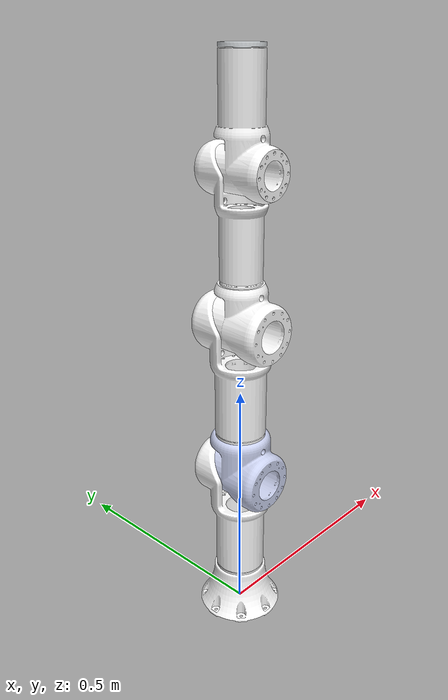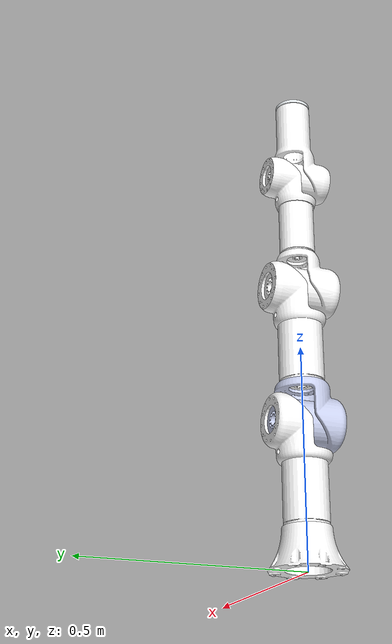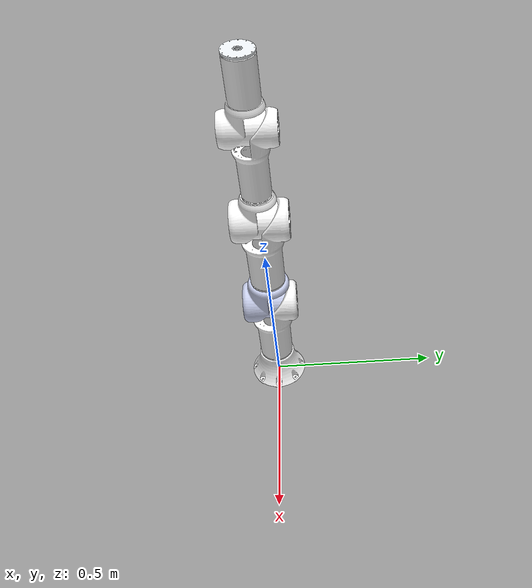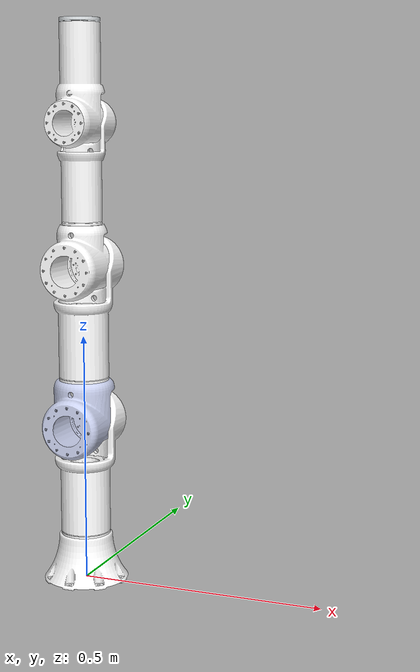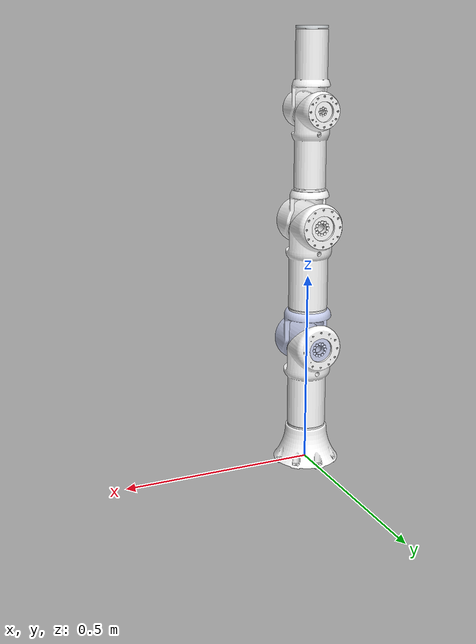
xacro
<?xml version="1.0" encoding="utf-8"?>
<robot name="armt" xmlns:xacro="http://ros.org/wiki/xacro">

<xacro:include filename="$(find armt_description)/robot/joint_gazebo.urdf.xacro" />

<gazebo reference="base_link">
  <material>Gazebo/DarkGrey</material>
  <mu1 value="10.0"/>
  <mu2 value="10.0"/>
  <kp value="100000000.0" />
  <kd value="1.0" />
  <fdir1 value="1 0 0"/>
  <gravity value="true"/>
</gazebo>

<gazebo>
    <plugin name="gazebo_ros_control" filename="libgazebo_ros_control.so">
      <robotNamespace>armt</robotNamespace>
      <robotSimType>gazebo_ros_control/DefaultRobotHWSim</robotSimType>
      <legacyModeNS>true</legacyModeNS>
   </plugin>
</gazebo>
<!-- simple  joints macros configure the joint driver and param-->
  <xacro:armt_joint joint_prefix="1"> </xacro:armt_joint>
  <xacro:armt_joint joint_prefix="2"> </xacro:armt_joint>
  <xacro:armt_joint joint_prefix="3"> </xacro:armt_joint>
  <xacro:armt_joint joint_prefix="4"> </xacro:armt_joint>
  <xacro:armt_joint joint_prefix="5"> </xacro:armt_joint>
  <xacro:armt_joint joint_prefix="6"> </xacro:armt_joint>
  <xacro:armt_joint joint_prefix="7"> </xacro:armt_joint>

  <link name="world"/>

<joint name="fixed" type="fixed">
  <parent link="world"/>
  <child link="base_link"/>
</joint>

  <link
    name="base_link">
    <inertial>
      <origin
        xyz="1.1573E-17 0.038378 -6.6824E-18"
        rpy="0 0 0" />
      <mass
        value="1.52905" />
      <inertia
        ixx="0.0013499"
        ixy="1.8086E-19"
        ixz="3.6213E-19"
        iyy="0.0018032"
        iyz="-9.8905E-19"
        izz="0.0013499" />
    </inertial>
    <visual>
      <origin
        xyz="0 0 0"
        rpy="0 0 0" />
      <geometry>
        <mesh
          filename="package://arm_hand/meshes/base_link.STL" />
      </geometry>
      <material
        name="">
        <color
          rgba="1 1 1 1" />
      </material>
    </visual>
    <collision>
      <origin
        xyz="0 0 0"
        rpy="0 0 0" />
      <geometry>
        <mesh
          filename="package://arm_hand/meshes/base_link.STL" />
      </geometry>
    </collision>
  </link>
  <link
    name="link1">
    <inertial>
      <origin
        xyz="0.00010945 0.018543 0.12833"
        rpy="0 0 0" />
      <mass
        value="1.60706" />
      <inertia
        ixx="0.0052527"
        ixy="1.2302E-06"
        ixz="6.2782E-06"
        iyy="0.0052194"
        iyz="-0.001062"
        izz="0.0016215" />
    </inertial>
    <visual>
      <origin
        xyz="0 0 0"
        rpy="0 0 0" />
      <geometry>
        <mesh
          filename="package://arm_hand/meshes/link1.STL" />
      </geometry>
      <material
        name="">
        <color
          rgba="1 1 1 1" />
      </material>
    </visual>
    <collision>
      <origin
        xyz="0 0 0"
        rpy="0 0 0" />
      <geometry>
        <mesh
          filename="package://arm_hand/meshes/link1.STL" />
      </geometry>
    </collision>
  </link>
  <joint
    name="joint1"
    type="revolute">
    <origin
      xyz="0 0 0.093"
      rpy="0 0 0" />
    <parent
      link="base_link" />
    <child
      link="link1" />
    <axis
      xyz="0 0 1" />
      <limit
        lower="-3"
        upper="3"
        effort="100"
        velocity="2" />
  </joint>
  <link
    name="link2">
    <inertial>
      <origin
        xyz="0.00011075 -0.017942 0.0078663"
        rpy="0 0 0" />
      <mass
        value="1.60706" />
      <inertia
        ixx="0.0024049"
        ixy="-1.1871E-06"
        ixz="2.9893E-06"
        iyy="0.0021682"
        iyz="2.4034E-06"
        izz="0.0018251" />
    </inertial>
    <visual>
      <origin
        xyz="0 0 0"
        rpy="0 0 0" />
      <geometry>
        <mesh
          filename="package://arm_hand/meshes/link2.STL" />
      </geometry>
      <material
        name="">
        <color
          rgba="0.79216 0.81961 0.93333 1" />
      </material>
    </visual>
    <collision>
      <origin
        xyz="0 0 0"
        rpy="0 0 0" />
      <geometry>
        <mesh
          filename="package://arm_hand/meshes/link2.STL" />
      </geometry>
    </collision>
  </link>
  <joint
    name="joint2"
    type="revolute">
    <origin
      xyz="0 0 0.2305"
      rpy="-1.5708 0 3.1416" />
    <parent
      link="link1" />
    <child
      link="link2" />
    <axis
      xyz="0 0 1" />
    <limit
      lower="-1.5708"
      upper="1.5708"
      effort="100"
      velocity="2" />
  </joint>
  <link
    name="link3">
    <inertial>
      <origin
        xyz="0.00012135 0.016856 0.12027"
        rpy="0 0 0" />
      <mass
        value="1.55026" />
      <inertia
        ixx="0.0046713"
        ixy="1.1239E-06"
        ixz="5.7279E-06"
        iyy="0.0045964"
        iyz="-0.00093576"
        izz="0.0014215" />
    </inertial>
    <visual>
      <origin
        xyz="0 0 0"
        rpy="0 0 0" />
      <geometry>
        <mesh
          filename="package://arm_hand/meshes/link3.STL" />
      </geometry>
      <material
        name="">
        <color
          rgba="1 1 1 1" />
      </material>
    </visual>
    <collision>
      <origin
        xyz="0 0 0"
        rpy="0 0 0" />
      <geometry>
        <mesh
          filename="package://arm_hand/meshes/link3.STL" />
      </geometry>
    </collision>
  </link>
  <joint
    name="joint3"
    type="revolute">
    <origin
      xyz="0 -0.0875 0"
      rpy="-1.5708 0 -3.1416" />
    <parent
      link="link2" />
    <child
      link="link3" />
    <axis
      xyz="0 0 1" />
      <limit
        lower="-3"
        upper="3"
        effort="100"
        velocity="2" />
  </joint>
  <link
    name="link4">
    <inertial>
      <origin
        xyz="0.00012809 -0.012483 0.0052641"
        rpy="0 0 0" />
      <mass
        value="1.52212" />
      <inertia
        ixx="0.0019651"
        ixy="-8.33E-07"
        ixz="2.8077E-06"
        iyy="0.0017984"
        iyz="2.5495E-05"
        izz="0.0013529" />
    </inertial>
    <visual>
      <origin
        xyz="0 0 0"
        rpy="0 0 0" />
      <geometry>
        <mesh
          filename="package://arm_hand/meshes/link4.STL" />
      </geometry>
      <material
        name="">
        <color
          rgba="1 1 1 1" />
      </material>
    </visual>
    <collision>
      <origin
        xyz="0 0 0"
        rpy="0 0 0" />
      <geometry>
        <mesh
          filename="package://arm_hand/meshes/link4.STL" />
      </geometry>
    </collision>
  </link>
  <joint
    name="joint4"
    type="revolute">
    <origin
      xyz="0 0 0.2285"
      rpy="-1.5708 0 3.1416" />
    <parent
      link="link3" />
    <child
      link="link4" />
    <axis
      xyz="0 0 1" />
    <limit
      lower="-1.5708"
      upper="1.5708"
      effort="100"
      velocity="2" />
  </joint>
  <link
    name="link5">
    <inertial>
      <origin
        xyz="1.2142E-07 0.015081 0.10577"
        rpy="0 0 0" />
      <mass
        value="1.33383" />
      <inertia
        ixx="0.0021595"
        ixy="-1.4296E-09"
        ixz="9.1759E-11"
        iyy="0.0020793"
        iyz="-0.00045807"
        izz="0.00059386" />
    </inertial>
    <visual>
      <origin
        xyz="0 0 0"
        rpy="0 0 0" />
      <geometry>
        <mesh
          filename="package://arm_hand/meshes/link5.STL" />
      </geometry>
      <material
        name="">
        <color
          rgba="1 1 1 1" />
      </material>
    </visual>
    <collision>
      <origin
        xyz="0 0 0"
        rpy="0 0 0" />
      <geometry>
        <mesh
          filename="package://arm_hand/meshes/link5.STL" />
      </geometry>
    </collision>
  </link>
  <joint
    name="joint5"
    type="revolute">
    <origin
      xyz="0 -0.0835 0"
      rpy="-1.5708 0 3.1416" />
    <parent
      link="link4" />
    <child
      link="link5" />
    <axis
      xyz="0 0 1" />
      <limit
        lower="-3"
        upper="3"
        effort="100"
        velocity="2" />
  </joint>
  <link
    name="link6">
    <inertial>
      <origin
        xyz="5.949E-08 -0.052988 0.0036397"
        rpy="0 0 0" />
      <mass
        value="1.48339" />
      <inertia
        ixx="0.0030887"
        ixy="-7.6314E-09"
        ixz="-1.9399E-09"
        iyy="0.0010669"
        iyz="-7.2904E-05"
        izz="0.0027189" />
    </inertial>
    <visual>
      <origin
        xyz="0 0 0"
        rpy="0 0 0" />
      <geometry>
        <mesh
          filename="package://arm_hand/meshes/link6.STL" />
      </geometry>
      <material
        name="">
        <color
          rgba="1 1 1 1" />
      </material>
    </visual>
    <collision>
      <origin
        xyz="0 0 0"
        rpy="0 0 0" />
      <geometry>
        <mesh
          filename="package://arm_hand/meshes/link6.STL" />
      </geometry>
    </collision>
  </link>
  <joint
    name="joint6"
    type="revolute">
    <origin
      xyz="0 0 0.201"
      rpy="-1.5708 0 3.1416" />
    <parent
      link="link5" />
    <child
      link="link6" />
    <axis
      xyz="0 0 1" />
    <limit
      lower="-1.5708"
      upper="1.5708"
      effort="100"
      velocity="10" />
  </joint>
  <link
    name="link7">
    <inertial>
      <origin
        xyz="-9.4726E-16 1.3048E-18 0.0069942"
        rpy="0 0 0" />
      <mass
        value="1.084854" />
      <inertia
        ixx="3.4215E-05"
        ixy="-1.7999E-21"
        ixz="-5.7516E-21"
        iyy="3.4215E-05"
        iyz="-2.3556E-22"
        izz="6.7596E-05" />
    </inertial>
    <visual>
      <origin
        xyz="0 0 0"
        rpy="0 0 0" />
      <geometry>
        <mesh
          filename="package://arm_hand/meshes/link7.STL" />
      </geometry>
      <material
        name="">
        <color
          rgba="0.89804 0.91765 0.92941 1" />
      </material>
    </visual>
    <collision>
      <origin
        xyz="0 0 0"
        rpy="0 0 0" />
      <geometry>
        <mesh
          filename="package://arm_hand/meshes/link7.STL" />
      </geometry>
    </collision>
  </link>
  <joint
    name="joint7"
    type="revolute">
    <origin
      xyz="0 -0.1905 0"
      rpy="-1.5708 3.1416 3.1416" />
    <parent
      link="link6" />
    <child
      link="link7" />
    <axis
      xyz="0 0 1" />
      <limit
        lower="-3"
        upper="3"
        effort="100"
        velocity="2" />
  </joint>
</robot>
